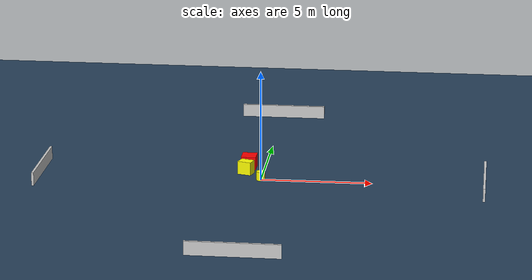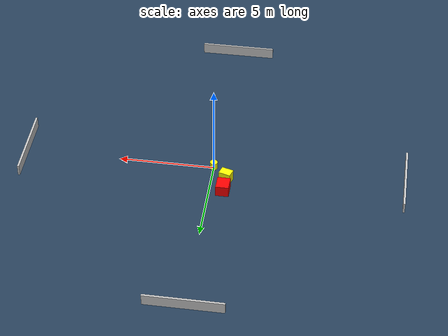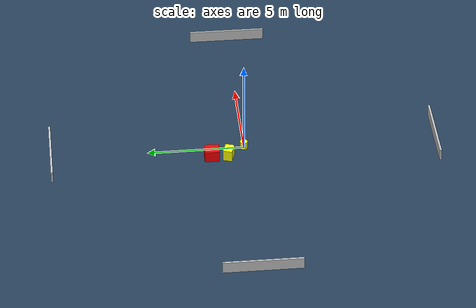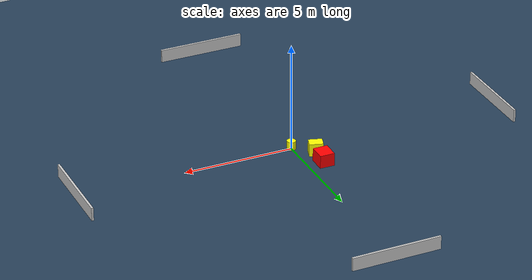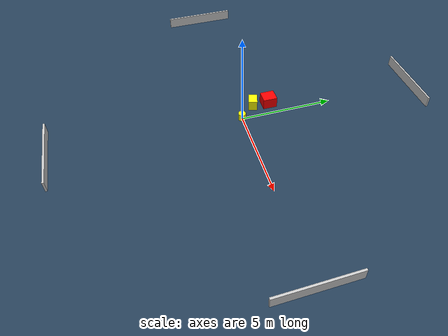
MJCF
<?xml version="1.0" ?>
<mujoco model="generated_environment">
  <option timestep="0.01" integrator="RK4" cone="elliptic"/>
  <default>
    <geom density="1"/>
  </default>
  <asset>
    <texture builtin="gradient" height="3072" name="skybox" rgb1="0.3 0.5 0.7" rgb2="0 0 0" type="skybox" width="512"/>
    <texture builtin="checker" height="300" name="groundplane" rgb1="0.2 0.3 0.4" rgb2="0.1 0.2 0.3" type="2d" width="300"/>
    <material name="groundplane" reflectance="0.2" texrepeat="5 5" texture="groundplane"/>
  </asset>
  <worldbody>
    <light dir="0 0 -1" directional="true" pos="0 0 1.5"/>
    <geom condim="3" friction="0.5 0.005 0.001" material="groundplane" name="floor" pos="0 0 0" size="0 0 0.05" type="plane"/>
    <body name="walls">
      <geom name="wall_1" condim="4" pos="-10.0 0.0 0.3" rgba="0.800000011920929 0.800000011920929 0.800000011920929 1.0" size="0.05 2.0 0.3" type="box"/>
      <geom name="wall_2" condim="4" pos="10.0 0.0 0.3" rgba="0.800000011920929 0.800000011920929 0.800000011920929 1.0" size="0.05 2.0 0.3" type="box"/>
      <geom name="wall_3" condim="4" pos="0.0 -10.0 0.3" rgba="0.800000011920929 0.800000011920929 0.800000011920929 1.0" size="2.0 0.05 0.3" type="box"/>
      <geom name="wall_4" condim="4" pos="0.0 10.0 0.3" rgba="0.800000011920929 0.800000011920929 0.800000011920929 1.0" size="2.0 0.05 0.3" type="box"/>
    </body>
    <body name="robot">
      <joint name="joint_x" type="slide" pos="0 0 0" axis="1 0 0"/>
      <joint name="joint_y" type="slide" pos="0 0 0" axis="0 1 0"/>
      <geom name="robot" type="cylinder" pos="0.0 0.0 0.2" size="0.2 0.2 0.0" mass="5.0" friction="1.0 0.005 0.0001" condim="4" rgba="1.0 1.0 0.0 1.0"/>
    </body>
    <body name="obstacle_1_movable">
      <geom name="obstacle_1_movable" condim="4" pos="-0.7652085449264028 0.850264354483223 0.3" euler="0 0 162.4054571513576" friction="0.0 0.005 0.001" rgba="1.0 1.0 0.0 1.0" size="0.31169844810504244 0.23109902019498788 0.3" type="box" mass="0.1"/>
      <joint type="free"/>
    </body>
    <body name="obstacle_2_static">
      <geom name="obstacle_2_static" condim="4" pos="-0.7271406502946611 1.7260933721994811 0.3" euler="0 0 89.47440949864546" friction="0.0 0.005 0.001" rgba="1.0 0.0 0.0 1.0" size="0.3807864923727216 0.33659482463758694 0.3" type="box"/>
    </body>
  </worldbody>
  <actuator>
    <motor name="actuator_x" joint="joint_x" gear="1" ctrlrange="-1 1"/>
    <motor name="actuator_y" joint="joint_y" gear="1" ctrlrange="-1 1"/>
  </actuator>
</mujoco>
